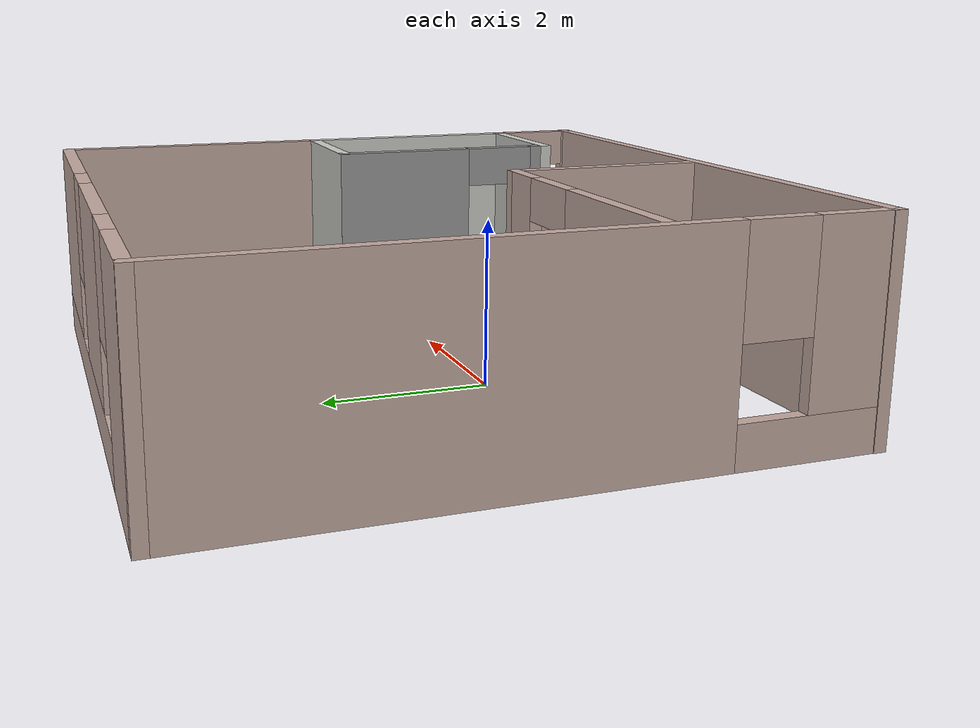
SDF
<?xml version='1.0'?>
<sdf version='1.7'>
  <model name='studio'>
    <pose>0.465 0.715 0 0 -0 0</pose>
    <link name='Wall_0'>
      <pose>-3.675 -0 0 0 -0 -1.5708</pose>
      <visual name='Wall_0_Visual_0'>
        <pose>-0.8875 0 1.25 0 -0 0</pose>
        <geometry>
          <box>
            <size>5.725 0.15 2.5</size>
          </box>
        </geometry>
        <material>
          <script>
            <uri>file://media/materials/scripts/gazebo.material</uri>
            <name>Gazebo/Grey</name>
          </script>
          <ambient>0.760784 0.662745 0.627451 1</ambient>
        </material>
        <meta>
          <layer>0</layer>
        </meta>
      </visual>
      <collision name='Wall_0_Collision_0'>
        <geometry>
          <box>
            <size>5.725 0.15 2.5</size>
          </box>
        </geometry>
        <pose>-0.8875 0 1.25 0 -0 0</pose>
      </collision>
      <visual name='Wall_0_Visual_1'>
        <pose>2.8625 0 0.25 0 -0 0</pose>
        <geometry>
          <box>
            <size>1.775 0.15 0.5</size>
          </box>
        </geometry>
        <material>
          <script>
            <uri>file://media/materials/scripts/gazebo.material</uri>
            <name>Gazebo/Grey</name>
          </script>
          <ambient>0.760784 0.662745 0.627451 1</ambient>
        </material>
        <meta>
          <layer>0</layer>
        </meta>
      </visual>
      <collision name='Wall_0_Collision_1'>
        <geometry>
          <box>
            <size>1.775 0.15 0.5</size>
          </box>
        </geometry>
        <pose>2.8625 0 0.25 0 -0 0</pose>
      </collision>
      <visual name='Wall_0_Visual_2'>
        <pose>3.2625 0 1.5 0 -0 0</pose>
        <geometry>
          <box>
            <size>0.975 0.15 2</size>
          </box>
        </geometry>
        <material>
          <script>
            <uri>file://media/materials/scripts/gazebo.material</uri>
            <name>Gazebo/Grey</name>
          </script>
          <ambient>0.760784 0.662745 0.627451 1</ambient>
        </material>
        <meta>
          <layer>0</layer>
        </meta>
      </visual>
      <collision name='Wall_0_Collision_2'>
        <geometry>
          <box>
            <size>0.975 0.15 2</size>
          </box>
        </geometry>
        <pose>3.2625 0 1.5 0 -0 0</pose>
      </collision>
      <visual name='Wall_0_Visual_3'>
        <pose>2.375 0 1.9 0 -0 0</pose>
        <geometry>
          <box>
            <size>0.8 0.15 1.2</size>
          </box>
        </geometry>
        <material>
          <script>
            <uri>file://media/materials/scripts/gazebo.material</uri>
            <name>Gazebo/Grey</name>
          </script>
          <ambient>0.760784 0.662745 0.627451 1</ambient>
        </material>
        <meta>
          <layer>0</layer>
        </meta>
      </visual>
      <collision name='Wall_0_Collision_3'>
        <geometry>
          <box>
            <size>0.8 0.15 1.2</size>
          </box>
        </geometry>
        <pose>2.375 0 1.9 0 -0 0</pose>
      </collision>
    </link>
    <link name='Wall_1'>
      <collision name='Wall_1_Collision'>
        <geometry>
          <box>
            <size>7.52 0.15 2.5</size>
          </box>
        </geometry>
        <pose>0 0 1.25 0 -0 0</pose>
      </collision>
      <visual name='Wall_1_Visual'>
        <pose>0 0 1.25 0 -0 0</pose>
        <geometry>
          <box>
            <size>7.52 0.15 2.5</size>
          </box>
        </geometry>
        <material>
          <script>
            <uri>file://media/materials/scripts/gazebo.material</uri>
            <name>Gazebo/Grey</name>
          </script>
          <ambient>0.760784 0.662745 0.627451 1</ambient>
        </material>
        <meta>
          <layer>0</layer>
        </meta>
      </visual>
      <pose>-0 -3.675 0 0 -0 0</pose>
    </link>
    <link name='Wall_11'>
      <collision name='Wall_11_Collision'>
        <geometry>
          <box>
            <size>3.5 0.15 2.5</size>
          </box>
        </geometry>
        <pose>0 0 1.25 0 -0 0</pose>
      </collision>
      <visual name='Wall_11_Visual'>
        <pose>0 0 1.25 0 -0 0</pose>
        <geometry>
          <box>
            <size>3.5 0.15 2.5</size>
          </box>
        </geometry>
        <material>
          <script>
            <uri>file://media/materials/scripts/gazebo.material</uri>
            <name>Gazebo/Grey</name>
          </script>
          <ambient>0.760784 0.662745 0.627451 1</ambient>
        </material>
        <meta>
          <layer>0</layer>
        </meta>
      </visual>
      <pose>3.685 1.95 0 0 -0 1.5708</pose>
    </link>
    <link name='Wall_13'>
      <pose>-0 3.675 0 0 -0 0</pose>
      <visual name='Wall_13_Visual_0'>
        <pose>-3.0275 0 1.25 0 -0 0</pose>
        <geometry>
          <box>
            <size>1.445 0.15 2.5</size>
          </box>
        </geometry>
        <material>
          <script>
            <uri>file://media/materials/scripts/gazebo.material</uri>
            <name>Gazebo/Grey</name>
          </script>
          <ambient>0.760784 0.662745 0.627451 1</ambient>
        </material>
        <meta>
          <layer>0</layer>
        </meta>
      </visual>
      <collision name='Wall_13_Collision_0'>
        <geometry>
          <box>
            <size>1.445 0.15 2.5</size>
          </box>
        </geometry>
        <pose>-3.0275 0 1.25 0 -0 0</pose>
      </collision>
      <visual name='Wall_13_Visual_1'>
        <pose>0.7225 0 0.25 0 -0 0</pose>
        <geometry>
          <box>
            <size>6.055 0.15 0.5</size>
          </box>
        </geometry>
        <material>
          <script>
            <uri>file://media/materials/scripts/gazebo.material</uri>
            <name>Gazebo/Grey</name>
          </script>
          <ambient>0.760784 0.662745 0.627451 1</ambient>
        </material>
        <meta>
          <layer>0</layer>
        </meta>
      </visual>
      <collision name='Wall_13_Collision_1'>
        <geometry>
          <box>
            <size>6.055 0.15 0.5</size>
          </box>
        </geometry>
        <pose>0.7225 0 0.25 0 -0 0</pose>
      </collision>
      <visual name='Wall_13_Visual_2'>
        <pose>-0.48 0 1.5 0 -0 0</pose>
        <geometry>
          <box>
            <size>2.05 0.15 2</size>
          </box>
        </geometry>
        <material>
          <script>
            <uri>file://media/materials/scripts/gazebo.material</uri>
            <name>Gazebo/Grey</name>
          </script>
          <ambient>0.760784 0.662745 0.627451 1</ambient>
        </material>
        <meta>
          <layer>0</layer>
        </meta>
      </visual>
      <collision name='Wall_13_Collision_2'>
        <geometry>
          <box>
            <size>2.05 0.15 2</size>
          </box>
        </geometry>
        <pose>-0.48 0 1.5 0 -0 0</pose>
      </collision>
      <visual name='Wall_13_Visual_3'>
        <pose>2.5475 0 1.5 0 -0 0</pose>
        <geometry>
          <box>
            <size>2.405 0.15 2</size>
          </box>
        </geometry>
        <material>
          <script>
            <uri>file://media/materials/scripts/gazebo.material</uri>
            <name>Gazebo/Grey</name>
          </script>
          <ambient>0.760784 0.662745 0.627451 1</ambient>
        </material>
        <meta>
          <layer>0</layer>
        </meta>
      </visual>
      <collision name='Wall_13_Collision_3'>
        <geometry>
          <box>
            <size>2.405 0.15 2</size>
          </box>
        </geometry>
        <pose>2.5475 0 1.5 0 -0 0</pose>
      </collision>
      <visual name='Wall_13_Visual_4'>
        <pose>-1.905 0 1.9 0 -0 0</pose>
        <geometry>
          <box>
            <size>0.8 0.15 1.2</size>
          </box>
        </geometry>
        <material>
          <script>
            <uri>file://media/materials/scripts/gazebo.material</uri>
            <name>Gazebo/Grey</name>
          </script>
          <ambient>0.760784 0.662745 0.627451 1</ambient>
        </material>
        <meta>
          <layer>0</layer>
        </meta>
      </visual>
      <collision name='Wall_13_Collision_4'>
        <geometry>
          <box>
            <size>0.8 0.15 1.2</size>
          </box>
        </geometry>
        <pose>-1.905 0 1.9 0 -0 0</pose>
      </collision>
      <visual name='Wall_13_Visual_5'>
        <pose>0.945 0 1.9 0 -0 0</pose>
        <geometry>
          <box>
            <size>0.8 0.15 1.2</size>
          </box>
        </geometry>
        <material>
          <script>
            <uri>file://media/materials/scripts/gazebo.material</uri>
            <name>Gazebo/Grey</name>
          </script>
          <ambient>0.760784 0.662745 0.627451 1</ambient>
        </material>
        <meta>
          <layer>0</layer>
        </meta>
      </visual>
      <collision name='Wall_13_Collision_5'>
        <geometry>
          <box>
            <size>0.8 0.15 1.2</size>
          </box>
        </geometry>
        <pose>0.945 0 1.9 0 -0 0</pose>
      </collision>
    </link>
    <link name='Wall_15'>
      <collision name='Wall_15_Collision'>
        <geometry>
          <box>
            <size>2.5 0.15 2.5</size>
          </box>
        </geometry>
        <pose>0 0 1.25 0 -0 0</pose>
      </collision>
      <visual name='Wall_15_Visual'>
        <pose>0 0 1.25 0 -0 0</pose>
        <geometry>
          <box>
            <size>2.5 0.15 2.5</size>
          </box>
        </geometry>
        <material>
          <script>
            <uri>file://media/materials/scripts/gazebo.material</uri>
            <name>Gazebo/Grey</name>
          </script>
          <ambient>0.760784 0.662745 0.627451 1</ambient>
        </material>
        <meta>
          <layer>0</layer>
        </meta>
      </visual>
      <pose>-0.075 -2.39 0 0 -0 1.5708</pose>
    </link>
    <link name='Wall_17'>
      <pose>-1.875 -1.215 0 0 -0 3.14159</pose>
      <visual name='Wall_17_Visual_0'>
        <pose>-1.5325 0 1.25 0 -0 0</pose>
        <geometry>
          <box>
            <size>0.685 0.15 2.5</size>
          </box>
        </geometry>
        <material>
          <script>
            <uri>file://media/materials/scripts/gazebo.material</uri>
            <name>Gazebo/Grey</name>
          </script>
          <ambient>0.760784 0.662745 0.627451 1</ambient>
        </material>
        <meta>
          <layer>0</layer>
        </meta>
      </visual>
      <collision name='Wall_17_Collision_0'>
        <geometry>
          <box>
            <size>0.685 0.15 2.5</size>
          </box>
        </geometry>
        <pose>-1.5325 0 1.25 0 -0 0</pose>
      </collision>
      <visual name='Wall_17_Visual_1'>
        <pose>0.7925 0 1.25 0 -0 0</pose>
        <geometry>
          <box>
            <size>2.165 0.15 2.5</size>
          </box>
        </geometry>
        <material>
          <script>
            <uri>file://media/materials/scripts/gazebo.material</uri>
            <name>Gazebo/Grey</name>
          </script>
          <ambient>0.760784 0.662745 0.627451 1</ambient>
        </material>
        <meta>
          <layer>0</layer>
        </meta>
      </visual>
      <collision name='Wall_17_Collision_1'>
        <geometry>
          <box>
            <size>2.165 0.15 2.5</size>
          </box>
        </geometry>
        <pose>0.7925 0 1.25 0 -0 0</pose>
      </collision>
      <visual name='Wall_17_Visual_2'>
        <pose>-0.74 0 2.25 0 -0 0</pose>
        <geometry>
          <box>
            <size>0.9 0.15 0.5</size>
          </box>
        </geometry>
        <material>
          <script>
            <uri>file://media/materials/scripts/gazebo.material</uri>
            <name>Gazebo/Grey</name>
          </script>
          <ambient>0.760784 0.662745 0.627451 1</ambient>
        </material>
        <meta>
          <layer>0</layer>
        </meta>
      </visual>
      <collision name='Wall_17_Collision_2'>
        <geometry>
          <box>
            <size>0.9 0.15 0.5</size>
          </box>
        </geometry>
        <pose>-0.74 0 2.25 0 -0 0</pose>
      </collision>
    </link>
    <link name='Wall_2'>
      <pose>3.685 -3.125 0 0 -0 1.5708</pose>
      <visual name='Wall_2_Visual_0'>
        <pose>-0.5375 0 1.25 0 -0 0</pose>
        <geometry>
          <box>
            <size>0.175 0.15 2.5</size>
          </box>
        </geometry>
        <material>
          <script>
            <uri>file://media/materials/scripts/gazebo.material</uri>
            <name>Gazebo/Grey</name>
          </script>
          <ambient>0.760784 0.662745 0.627451 1</ambient>
        </material>
        <meta>
          <layer>0</layer>
        </meta>
      </visual>
      <collision name='Wall_2_Collision_0'>
        <geometry>
          <box>
            <size>0.175 0.15 2.5</size>
          </box>
        </geometry>
        <pose>-0.5375 0 1.25 0 -0 0</pose>
      </collision>
      <visual name='Wall_2_Visual_1'>
        <pose>0.5375 0 1.25 0 -0 0</pose>
        <geometry>
          <box>
            <size>0.175 0.15 2.5</size>
          </box>
        </geometry>
        <material>
          <script>
            <uri>file://media/materials/scripts/gazebo.material</uri>
            <name>Gazebo/Grey</name>
          </script>
          <ambient>0.760784 0.662745 0.627451 1</ambient>
        </material>
        <meta>
          <layer>0</layer>
        </meta>
      </visual>
      <collision name='Wall_2_Collision_1'>
        <geometry>
          <box>
            <size>0.175 0.15 2.5</size>
          </box>
        </geometry>
        <pose>0.5375 0 1.25 0 -0 0</pose>
      </collision>
      <visual name='Wall_2_Visual_2'>
        <pose>-0 0 2.25 0 -0 0</pose>
        <geometry>
          <box>
            <size>0.9 0.15 0.5</size>
          </box>
        </geometry>
        <material>
          <script>
            <uri>file://media/materials/scripts/gazebo.material</uri>
            <name>Gazebo/Grey</name>
          </script>
          <ambient>0.760784 0.662745 0.627451 1</ambient>
        </material>
        <meta>
          <layer>0</layer>
        </meta>
      </visual>
      <collision name='Wall_2_Collision_2'>
        <geometry>
          <box>
            <size>0.9 0.15 0.5</size>
          </box>
        </geometry>
        <pose>-0 0 2.25 0 -0 0</pose>
      </collision>
    </link>
    <link name='Wall_4'>
      <collision name='Wall_4_Collision'>
        <geometry>
          <box>
            <size>1.75 0.15 2.5</size>
          </box>
        </geometry>
        <pose>0 0 1.25 0 -0 0</pose>
      </collision>
      <visual name='Wall_4_Visual'>
        <pose>0 0 1.25 0 -0 0</pose>
        <geometry>
          <box>
            <size>1.75 0.15 2.5</size>
          </box>
        </geometry>
        <material>
          <script>
            <uri>file://media/materials/scripts/gazebo.material</uri>
            <name>Gazebo/CeilingTiled</name>
          </script>
          <ambient>1 1 1 1</ambient>
        </material>
        <meta>
          <layer>0</layer>
        </meta>
      </visual>
      <pose>2.885 -2.575 0 0 -0 3.14159</pose>
    </link>
    <link name='Wall_6'>
      <pose>2.085 -1.15 0 0 -0 1.5708</pose>
      <visual name='Wall_6_Visual_0'>
        <pose>-1.3475 0 1.25 0 -0 0</pose>
        <geometry>
          <box>
            <size>0.305 0.15 2.5</size>
          </box>
        </geometry>
        <material>
          <script>
            <uri>file://media/materials/scripts/gazebo.material</uri>
            <name>Gazebo/Grey</name>
          </script>
          <ambient>1 1 1 1</ambient>
        </material>
        <meta>
          <layer>0</layer>
        </meta>
      </visual>
      <collision name='Wall_6_Collision_0'>
        <geometry>
          <box>
            <size>0.305 0.15 2.5</size>
          </box>
        </geometry>
        <pose>-1.3475 0 1.25 0 -0 0</pose>
      </collision>
      <visual name='Wall_6_Visual_1'>
        <pose>0.6025 0 1.25 0 -0 0</pose>
        <geometry>
          <box>
            <size>1.795 0.15 2.5</size>
          </box>
        </geometry>
        <material>
          <script>
            <uri>file://media/materials/scripts/gazebo.material</uri>
            <name>Gazebo/Grey</name>
          </script>
          <ambient>1 1 1 1</ambient>
        </material>
        <meta>
          <layer>0</layer>
        </meta>
      </visual>
      <collision name='Wall_6_Collision_1'>
        <geometry>
          <box>
            <size>1.795 0.15 2.5</size>
          </box>
        </geometry>
        <pose>0.6025 0 1.25 0 -0 0</pose>
      </collision>
      <visual name='Wall_6_Visual_2'>
        <pose>-0.745 0 2.25 0 -0 0</pose>
        <geometry>
          <box>
            <size>0.9 0.15 0.5</size>
          </box>
        </geometry>
        <material>
          <script>
            <uri>file://media/materials/scripts/gazebo.material</uri>
            <name>Gazebo/Grey</name>
          </script>
          <ambient>1 1 1 1</ambient>
        </material>
        <meta>
          <layer>0</layer>
        </meta>
      </visual>
      <collision name='Wall_6_Collision_2'>
        <geometry>
          <box>
            <size>0.9 0.15 0.5</size>
          </box>
        </geometry>
        <pose>-0.745 0 2.25 0 -0 0</pose>
      </collision>
    </link>
    <link name='Wall_8'>
      <collision name='Wall_8_Collision'>
        <geometry>
          <box>
            <size>3 0.15 2.5</size>
          </box>
        </geometry>
        <pose>0 0 1.25 0 -0 0</pose>
      </collision>
      <visual name='Wall_8_Visual'>
        <pose>0 0 1.25 0 -0 0</pose>
        <geometry>
          <box>
            <size>3 0.15 2.5</size>
          </box>
        </geometry>
        <material>
          <script>
            <uri>file://media/materials/scripts/gazebo.material</uri>
            <name>Gazebo/CeilingTiled</name>
          </script>
          <ambient>0.760784 0.662745 0.627451 1</ambient>
        </material>
        <meta>
          <layer>0</layer>
        </meta>
      </visual>
      <pose>3.685 -1.15 0 0 -0 1.5708</pose>
    </link>
    <link name='Wall_9'>
      <collision name='Wall_9_Collision'>
        <geometry>
          <box>
            <size>1.75 0.15 2.5</size>
          </box>
        </geometry>
        <pose>0 0 1.25 0 -0 0</pose>
      </collision>
      <visual name='Wall_9_Visual'>
        <pose>0 0 1.25 0 -0 0</pose>
        <geometry>
          <box>
            <size>1.75 0.15 2.5</size>
          </box>
        </geometry>
        <material>
          <script>
            <uri>file://media/materials/scripts/gazebo.material</uri>
            <name>Gazebo/CeilingTiled</name>
          </script>
          <ambient>1 1 1 1</ambient>
        </material>
        <meta>
          <layer>0</layer>
        </meta>
      </visual>
      <pose>2.885 0.275 0 0 -0 3.14159</pose>
    </link>
    <static>1</static>
  </model>
</sdf>
